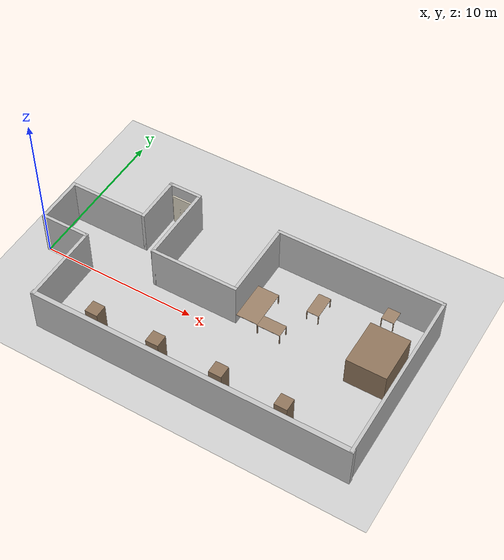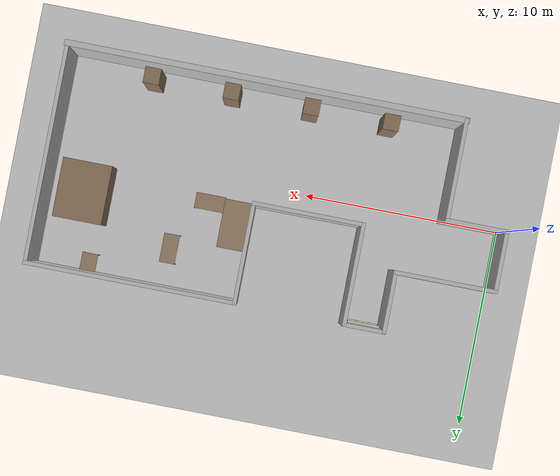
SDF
<?xml version="1.0" ?>
<sdf version="1.9">
  <world name="kmr_iiwa_world">
    <gravity>0 0 -9.81</gravity>
    <physics name="1ms" type="ignored">
      <max_step_size>0.001</max_step_size>
      <real_time_factor>1.0</real_time_factor>
    </physics>
    <plugin
      filename="ignition-gazebo-physics-system"
      name="ignition::gazebo::systems::Physics">
    </plugin>
    <plugin
        filename="ignition-gazebo-scene-broadcaster-system"
        name="ignition::gazebo::systems::SceneBroadcaster">
    </plugin>
    <plugin
      filename="gz-sim-sensors-system"
      name="gz::sim::systems::Sensors">
      <render_engine>ogre2</render_engine>
    </plugin>

    <plugin filename="libignition-gazebo-imu-system.so"
            name="ignition::gazebo::systems::Imu">
    </plugin>
    <plugin
      filename="libignition-gazebo-magnetometer-system"
      name="ignition::gazebo::systems::Magnetometer">
    </plugin>
    <plugin
      filename="libignition-gazebo-forcetorque-system"
      name="ignition::gazebo::systems::ForceTorque">
    </plugin>
    <!-- Necessary for spawining robot even from the launch-->
    <plugin
      filename="libignition-gazebo-user-commands-system"
      name="ignition::gazebo::systems::UserCommands">
    </plugin>

    <light type="directional" name="sun">
      <cast_shadows>true</cast_shadows>
      <pose>0 0 10 0 0 0</pose>
      <diffuse>0.8 0.8 0.8 1</diffuse>
      <specular>0.2 0.2 0.2 1</specular>
      <attenuation>
        <range>1000</range>
        <constant>0.9</constant>
        <linear>0.01</linear>
        <quadratic>0.001</quadratic>
      </attenuation>
      <direction>-0.5 0.1 -0.9</direction>
    </light>

    <model name="ground_plane">
      <static>true</static>
      <link name="link">
        <collision name="collision">
          <geometry>
            <plane>
              <normal>0 0 1</normal>
              <size>100 100</size>
            </plane>
          </geometry>
        </collision>
        <visual name="visual">
          <geometry>
            <plane>
              <normal>0 0 1</normal>
              <size>100 100</size>
            </plane>
          </geometry>
          <material>
            <ambient>0.8 0.8 0.8 1</ambient>
            <diffuse>0.8 0.8 0.8 1</diffuse>
            <specular>0.8 0.8 0.8 1</specular>
          </material>
        </visual>
      </link>
    </model>

    <!-- ===== Generado por generar_mundo.py a partir de laboratorio.yaml ===== -->
    <!-- Origen: Esquina SE, junto al pasillo -->
    <model name="pared_pasillo">
      <static>true</static>
      <pose>1.500 0.000 1.500 0 0 0.0000</pose>
      <link name="link">
        <collision name="pared_col"><pose>0 0 0 0 0 0</pose><geometry><box><size>3.200 0.200 3.000</size></box></geometry></collision>
        <visual name="pared_vis"><pose>0 0 0 0 0 0</pose><geometry><box><size>3.200 0.200 3.000</size></box></geometry><material><ambient>0.75 0.75 0.75 1</ambient><diffuse>0.75 0.75 0.75 1</diffuse></material></visual>
      </link>
    </model>
    <model name="pared_comedor">
      <static>true</static>
      <pose>3.000 -2.500 1.500 0 0 -1.5708</pose>
      <link name="link">
        <collision name="pared_col"><pose>0 0 0 0 0 0</pose><geometry><box><size>5.200 0.200 3.000</size></box></geometry></collision>
        <visual name="pared_vis"><pose>0 0 0 0 0 0</pose><geometry><box><size>5.200 0.200 3.000</size></box></geometry><material><ambient>0.75 0.75 0.75 1</ambient><diffuse>0.75 0.75 0.75 1</diffuse></material></visual>
      </link>
    </model>
    <model name="pared_cristal">
      <static>true</static>
      <pose>13.000 -5.000 1.500 0 0 0.0000</pose>
      <link name="link">
        <collision name="pared_col"><pose>0 0 0 0 0 0</pose><geometry><box><size>20.300 0.300 3.000</size></box></geometry></collision>
        <visual name="pared_vis"><pose>0 0 0 0 0 0</pose><geometry><box><size>20.300 0.300 3.000</size></box></geometry><material><ambient>0.75 0.75 0.75 1</ambient><diffuse>0.75 0.75 0.75 1</diffuse></material></visual>
      </link>
    </model>
    <model name="pared_cosas">
      <static>true</static>
      <pose>2.500 3.000 1.500 0 0 0.0000</pose>
      <link name="link">
        <collision name="pared_col"><pose>0 0 0 0 0 0</pose><geometry><box><size>5.200 0.200 3.000</size></box></geometry></collision>
        <visual name="pared_vis"><pose>0 0 0 0 0 0</pose><geometry><box><size>5.200 0.200 3.000</size></box></geometry><material><ambient>0.75 0.75 0.75 1</ambient><diffuse>0.75 0.75 0.75 1</diffuse></material></visual>
      </link>
    </model>
    <model name="pared_cosas2">
      <static>true</static>
      <pose>5.000 4.500 1.500 0 0 1.5708</pose>
      <link name="link">
        <collision name="pared_col"><pose>0 0 0 0 0 0</pose><geometry><box><size>3.200 0.200 3.000</size></box></geometry></collision>
        <visual name="pared_vis"><pose>0 0 0 0 0 0</pose><geometry><box><size>3.200 0.200 3.000</size></box></geometry><material><ambient>0.75 0.75 0.75 1</ambient><diffuse>0.75 0.75 0.75 1</diffuse></material></visual>
      </link>
    </model>
    <model name="pared_suelta">
      <static>true</static>
      <pose>6.000 6.000 1.500 0 0 0.0000</pose>
      <link name="link">
        <collision name="pared_col"><pose>0 0 0 0 0 0</pose><geometry><box><size>2.200 0.200 3.000</size></box></geometry></collision>
        <visual name="pared_vis"><pose>0 0 0 0 0 0</pose><geometry><box><size>2.200 0.200 3.000</size></box></geometry><material><ambient>0.75 0.75 0.75 1</ambient><diffuse>0.75 0.75 0.75 1</diffuse></material></visual>
      </link>
    </model>
    <model name="pared_jaula">
      <static>true</static>
      <pose>7.000 3.500 1.500 0 0 -1.5708</pose>
      <link name="link">
        <collision name="pared_col"><pose>0 0 0 0 0 0</pose><geometry><box><size>5.200 0.200 3.000</size></box></geometry></collision>
        <visual name="pared_vis"><pose>0 0 0 0 0 0</pose><geometry><box><size>5.200 0.200 3.000</size></box></geometry><material><ambient>0.75 0.75 0.75 1</ambient><diffuse>0.75 0.75 0.75 1</diffuse></material></visual>
      </link>
    </model>
    <model name="pared_jaula2">
      <static>true</static>
      <pose>9.750 1.000 1.500 0 0 0.0000</pose>
      <link name="link">
        <collision name="pared_col"><pose>0 0 0 0 0 0</pose><geometry><box><size>5.700 0.200 3.000</size></box></geometry></collision>
        <visual name="pared_vis"><pose>0 0 0 0 0 0</pose><geometry><box><size>5.700 0.200 3.000</size></box></geometry><material><ambient>0.75 0.75 0.75 1</ambient><diffuse>0.75 0.75 0.75 1</diffuse></material></visual>
      </link>
    </model>
    <model name="pared_jaula3">
      <static>true</static>
      <pose>12.500 3.500 1.500 0 0 1.5708</pose>
      <link name="link">
        <collision name="pared_col"><pose>0 0 0 0 0 0</pose><geometry><box><size>5.200 0.200 3.000</size></box></geometry></collision>
        <visual name="pared_vis"><pose>0 0 0 0 0 0</pose><geometry><box><size>5.200 0.200 3.000</size></box></geometry><material><ambient>0.75 0.75 0.75 1</ambient><diffuse>0.75 0.75 0.75 1</diffuse></material></visual>
      </link>
    </model>
    <model name="pared_laboratorio">
      <static>true</static>
      <pose>17.750 6.000 1.500 0 0 0.0000</pose>
      <link name="link">
        <collision name="pared_col"><pose>0 0 0 0 0 0</pose><geometry><box><size>10.700 0.200 3.000</size></box></geometry></collision>
        <visual name="pared_vis"><pose>0 0 0 0 0 0</pose><geometry><box><size>10.700 0.200 3.000</size></box></geometry><material><ambient>0.75 0.75 0.75 1</ambient><diffuse>0.75 0.75 0.75 1</diffuse></material></visual>
      </link>
    </model>
    <model name="pared_final">
      <static>true</static>
      <pose>23.000 0.500 1.500 0 0 -1.5708</pose>
      <link name="link">
        <collision name="pared_col"><pose>0 0 0 0 0 0</pose><geometry><box><size>11.200 0.200 3.000</size></box></geometry></collision>
        <visual name="pared_vis"><pose>0 0 0 0 0 0</pose><geometry><box><size>11.200 0.200 3.000</size></box></geometry><material><ambient>0.75 0.75 0.75 1</ambient><diffuse>0.75 0.75 0.75 1</diffuse></material></visual>
      </link>
    </model>
    <model name="pared_cerrar">
      <static>true</static>
      <pose>0.000 1.500 1.500 0 0 -1.5708</pose>
      <link name="link">
        <collision name="pared_col"><pose>0 0 0 0 0 0</pose><geometry><box><size>3.200 0.200 3.000</size></box></geometry></collision>
        <visual name="pared_vis"><pose>0 0 0 0 0 0</pose><geometry><box><size>3.200 0.200 3.000</size></box></geometry><material><ambient>0.75 0.75 0.75 1</ambient><diffuse>0.75 0.75 0.75 1</diffuse></material></visual>
      </link>
    </model>
    <model name="columna_1">
      <static>true</static>
      <pose>6.600 -4.200 1.500 0 0 0.0000</pose>
      <link name="link">
        <collision name="caja_col"><pose>0 0 0 0 0 0</pose><geometry><box><size>0.800 0.800 3.000</size></box></geometry></collision>
        <visual name="caja_vis"><pose>0 0 0 0 0 0</pose><geometry><box><size>0.800 0.800 3.000</size></box></geometry><material><ambient>0.55 0.45 0.35 1</ambient><diffuse>0.55 0.45 0.35 1</diffuse></material></visual>
      </link>
    </model>
    <model name="columna_2">
      <static>true</static>
      <pose>10.600 -4.200 1.500 0 0 0.0000</pose>
      <link name="link">
        <collision name="caja_col"><pose>0 0 0 0 0 0</pose><geometry><box><size>0.800 0.800 3.000</size></box></geometry></collision>
        <visual name="caja_vis"><pose>0 0 0 0 0 0</pose><geometry><box><size>0.800 0.800 3.000</size></box></geometry><material><ambient>0.55 0.45 0.35 1</ambient><diffuse>0.55 0.45 0.35 1</diffuse></material></visual>
      </link>
    </model>
    <model name="columna_3">
      <static>true</static>
      <pose>14.600 -4.200 1.500 0 0 0.0000</pose>
      <link name="link">
        <collision name="caja_col"><pose>0 0 0 0 0 0</pose><geometry><box><size>0.800 0.800 3.000</size></box></geometry></collision>
        <visual name="caja_vis"><pose>0 0 0 0 0 0</pose><geometry><box><size>0.800 0.800 3.000</size></box></geometry><material><ambient>0.55 0.45 0.35 1</ambient><diffuse>0.55 0.45 0.35 1</diffuse></material></visual>
      </link>
    </model>
    <model name="columna_4">
      <static>true</static>
      <pose>18.600 -4.200 1.500 0 0 0.0000</pose>
      <link name="link">
        <collision name="caja_col"><pose>0 0 0 0 0 0</pose><geometry><box><size>0.800 0.800 3.000</size></box></geometry></collision>
        <visual name="caja_vis"><pose>0 0 0 0 0 0</pose><geometry><box><size>0.800 0.800 3.000</size></box></geometry><material><ambient>0.55 0.45 0.35 1</ambient><diffuse>0.55 0.45 0.35 1</diffuse></material></visual>
      </link>
    </model>
    <model name="coche">
      <static>true</static>
      <pose>21.050 2.000 1.000 0 0 0.0000</pose>
      <link name="link">
        <collision name="caja_col"><pose>0 0 0 0 0 0</pose><geometry><box><size>2.500 3.000 2.000</size></box></geometry></collision>
        <visual name="caja_vis"><pose>0 0 0 0 0 0</pose><geometry><box><size>2.500 3.000 2.000</size></box></geometry><material><ambient>0.55 0.45 0.35 1</ambient><diffuse>0.55 0.45 0.35 1</diffuse></material></visual>
      </link>
    </model>
    <model name="mesa_robot_audio">
      <static>true</static>
      <pose>16.320 4.000 0.000 0 0 0.0000</pose>
      <link name="link">
        <collision name="tablero_col"><pose>0 0 0.735 0 0 0</pose><geometry><box><size>0.800 1.500 0.030</size></box></geometry></collision>
        <visual name="tablero_vis"><pose>0 0 0.735 0 0 0</pose><geometry><box><size>0.800 1.500 0.030</size></box></geometry><material><ambient>0.60 0.50 0.40 1</ambient><diffuse>0.60 0.50 0.40 1</diffuse></material></visual>
        <collision name="pata0_col"><pose>0.375 0.725 0.360 0 0 0</pose><geometry><box><size>0.050 0.050 0.720</size></box></geometry></collision>
        <visual name="pata0_vis"><pose>0.375 0.725 0.360 0 0 0</pose><geometry><box><size>0.050 0.050 0.720</size></box></geometry><material><ambient>0.60 0.50 0.40 1</ambient><diffuse>0.60 0.50 0.40 1</diffuse></material></visual>
        <collision name="pata1_col"><pose>0.375 -0.725 0.360 0 0 0</pose><geometry><box><size>0.050 0.050 0.720</size></box></geometry></collision>
        <visual name="pata1_vis"><pose>0.375 -0.725 0.360 0 0 0</pose><geometry><box><size>0.050 0.050 0.720</size></box></geometry><material><ambient>0.60 0.50 0.40 1</ambient><diffuse>0.60 0.50 0.40 1</diffuse></material></visual>
        <collision name="pata2_col"><pose>-0.375 0.725 0.360 0 0 0</pose><geometry><box><size>0.050 0.050 0.720</size></box></geometry></collision>
        <visual name="pata2_vis"><pose>-0.375 0.725 0.360 0 0 0</pose><geometry><box><size>0.050 0.050 0.720</size></box></geometry><material><ambient>0.60 0.50 0.40 1</ambient><diffuse>0.60 0.50 0.40 1</diffuse></material></visual>
        <collision name="pata3_col"><pose>-0.375 -0.725 0.360 0 0 0</pose><geometry><box><size>0.050 0.050 0.720</size></box></geometry></collision>
        <visual name="pata3_vis"><pose>-0.375 -0.725 0.360 0 0 0</pose><geometry><box><size>0.050 0.050 0.720</size></box></geometry><material><ambient>0.60 0.50 0.40 1</ambient><diffuse>0.60 0.50 0.40 1</diffuse></material></visual>
      </link>
    </model>
    <model name="mesa_ordenadores">
      <static>true</static>
      <pose>13.250 2.200 0.000 0 0 0.0000</pose>
      <link name="link">
        <collision name="tablero_col"><pose>0 0 0.735 0 0 0</pose><geometry><box><size>1.500 2.500 0.030</size></box></geometry></collision>
        <visual name="tablero_vis"><pose>0 0 0.735 0 0 0</pose><geometry><box><size>1.500 2.500 0.030</size></box></geometry><material><ambient>0.60 0.50 0.40 1</ambient><diffuse>0.60 0.50 0.40 1</diffuse></material></visual>
        <collision name="pata0_col"><pose>0.725 1.225 0.360 0 0 0</pose><geometry><box><size>0.050 0.050 0.720</size></box></geometry></collision>
        <visual name="pata0_vis"><pose>0.725 1.225 0.360 0 0 0</pose><geometry><box><size>0.050 0.050 0.720</size></box></geometry><material><ambient>0.60 0.50 0.40 1</ambient><diffuse>0.60 0.50 0.40 1</diffuse></material></visual>
        <collision name="pata1_col"><pose>0.725 -1.225 0.360 0 0 0</pose><geometry><box><size>0.050 0.050 0.720</size></box></geometry></collision>
        <visual name="pata1_vis"><pose>0.725 -1.225 0.360 0 0 0</pose><geometry><box><size>0.050 0.050 0.720</size></box></geometry><material><ambient>0.60 0.50 0.40 1</ambient><diffuse>0.60 0.50 0.40 1</diffuse></material></visual>
        <collision name="pata2_col"><pose>-0.725 1.225 0.360 0 0 0</pose><geometry><box><size>0.050 0.050 0.720</size></box></geometry></collision>
        <visual name="pata2_vis"><pose>-0.725 1.225 0.360 0 0 0</pose><geometry><box><size>0.050 0.050 0.720</size></box></geometry><material><ambient>0.60 0.50 0.40 1</ambient><diffuse>0.60 0.50 0.40 1</diffuse></material></visual>
        <collision name="pata3_col"><pose>-0.725 -1.225 0.360 0 0 0</pose><geometry><box><size>0.050 0.050 0.720</size></box></geometry></collision>
        <visual name="pata3_vis"><pose>-0.725 -1.225 0.360 0 0 0</pose><geometry><box><size>0.050 0.050 0.720</size></box></geometry><material><ambient>0.60 0.50 0.40 1</ambient><diffuse>0.60 0.50 0.40 1</diffuse></material></visual>
      </link>
    </model>
    <model name="mesa_pc">
      <static>true</static>
      <pose>14.750 1.300 0.000 0 0 0.0000</pose>
      <link name="link">
        <collision name="tablero_col"><pose>0 0 0.735 0 0 0</pose><geometry><box><size>1.500 0.800 0.030</size></box></geometry></collision>
        <visual name="tablero_vis"><pose>0 0 0.735 0 0 0</pose><geometry><box><size>1.500 0.800 0.030</size></box></geometry><material><ambient>0.60 0.50 0.40 1</ambient><diffuse>0.60 0.50 0.40 1</diffuse></material></visual>
        <collision name="pata0_col"><pose>0.725 0.375 0.360 0 0 0</pose><geometry><box><size>0.050 0.050 0.720</size></box></geometry></collision>
        <visual name="pata0_vis"><pose>0.725 0.375 0.360 0 0 0</pose><geometry><box><size>0.050 0.050 0.720</size></box></geometry><material><ambient>0.60 0.50 0.40 1</ambient><diffuse>0.60 0.50 0.40 1</diffuse></material></visual>
        <collision name="pata1_col"><pose>0.725 -0.375 0.360 0 0 0</pose><geometry><box><size>0.050 0.050 0.720</size></box></geometry></collision>
        <visual name="pata1_vis"><pose>0.725 -0.375 0.360 0 0 0</pose><geometry><box><size>0.050 0.050 0.720</size></box></geometry><material><ambient>0.60 0.50 0.40 1</ambient><diffuse>0.60 0.50 0.40 1</diffuse></material></visual>
        <collision name="pata2_col"><pose>-0.725 0.375 0.360 0 0 0</pose><geometry><box><size>0.050 0.050 0.720</size></box></geometry></collision>
        <visual name="pata2_vis"><pose>-0.725 0.375 0.360 0 0 0</pose><geometry><box><size>0.050 0.050 0.720</size></box></geometry><material><ambient>0.60 0.50 0.40 1</ambient><diffuse>0.60 0.50 0.40 1</diffuse></material></visual>
        <collision name="pata3_col"><pose>-0.725 -0.375 0.360 0 0 0</pose><geometry><box><size>0.050 0.050 0.720</size></box></geometry></collision>
        <visual name="pata3_vis"><pose>-0.725 -0.375 0.360 0 0 0</pose><geometry><box><size>0.050 0.050 0.720</size></box></geometry><material><ambient>0.60 0.50 0.40 1</ambient><diffuse>0.60 0.50 0.40 1</diffuse></material></visual>
      </link>
    </model>
    <model name="mesa_cosas">
      <static>true</static>
      <pose>20.230 5.500 0.000 0 0 0.0000</pose>
      <link name="link">
        <collision name="tablero_col"><pose>0 0 0.735 0 0 0</pose><geometry><box><size>0.800 1.000 0.030</size></box></geometry></collision>
        <visual name="tablero_vis"><pose>0 0 0.735 0 0 0</pose><geometry><box><size>0.800 1.000 0.030</size></box></geometry><material><ambient>0.60 0.50 0.40 1</ambient><diffuse>0.60 0.50 0.40 1</diffuse></material></visual>
        <collision name="pata0_col"><pose>0.375 0.475 0.360 0 0 0</pose><geometry><box><size>0.050 0.050 0.720</size></box></geometry></collision>
        <visual name="pata0_vis"><pose>0.375 0.475 0.360 0 0 0</pose><geometry><box><size>0.050 0.050 0.720</size></box></geometry><material><ambient>0.60 0.50 0.40 1</ambient><diffuse>0.60 0.50 0.40 1</diffuse></material></visual>
        <collision name="pata1_col"><pose>0.375 -0.475 0.360 0 0 0</pose><geometry><box><size>0.050 0.050 0.720</size></box></geometry></collision>
        <visual name="pata1_vis"><pose>0.375 -0.475 0.360 0 0 0</pose><geometry><box><size>0.050 0.050 0.720</size></box></geometry><material><ambient>0.60 0.50 0.40 1</ambient><diffuse>0.60 0.50 0.40 1</diffuse></material></visual>
        <collision name="pata2_col"><pose>-0.375 0.475 0.360 0 0 0</pose><geometry><box><size>0.050 0.050 0.720</size></box></geometry></collision>
        <visual name="pata2_vis"><pose>-0.375 0.475 0.360 0 0 0</pose><geometry><box><size>0.050 0.050 0.720</size></box></geometry><material><ambient>0.60 0.50 0.40 1</ambient><diffuse>0.60 0.50 0.40 1</diffuse></material></visual>
        <collision name="pata3_col"><pose>-0.375 -0.475 0.360 0 0 0</pose><geometry><box><size>0.050 0.050 0.720</size></box></geometry></collision>
        <visual name="pata3_vis"><pose>-0.375 -0.475 0.360 0 0 0</pose><geometry><box><size>0.050 0.050 0.720</size></box></geometry><material><ambient>0.60 0.50 0.40 1</ambient><diffuse>0.60 0.50 0.40 1</diffuse></material></visual>
      </link>
    </model>
    <model name="panel_atornillado_jaula">
      <static>true</static>
      <pose>6.000 5.840 0.000 0 0 3.1416</pose>
      <link name="link">
        <collision name="panel_col"><pose>0 0 1.100 0 0 0</pose><geometry><box><size>1.600 0.100 2.200</size></box></geometry></collision>
        <visual name="panel_vis"><pose>0 0 1.100 0 0 0</pose><geometry><box><size>1.600 0.100 2.200</size></box></geometry><material><ambient>0.86 0.83 0.76 1</ambient><diffuse>0.86 0.83 0.76 1</diffuse></material></visual>
        <visual name="hueco_f0_c0_vis"><pose>-0.300 0.052 1.000 -1.5708 0 0</pose><geometry><cylinder><radius>0.020</radius><length>0.004</length></cylinder></geometry><material><ambient>0.08 0.08 0.08 1</ambient><diffuse>0.08 0.08 0.08 1</diffuse></material></visual>
        <visual name="hueco_f0_c1_vis"><pose>0.000 0.052 1.000 -1.5708 0 0</pose><geometry><cylinder><radius>0.020</radius><length>0.004</length></cylinder></geometry><material><ambient>0.08 0.08 0.08 1</ambient><diffuse>0.08 0.08 0.08 1</diffuse></material></visual>
        <visual name="hueco_f0_c2_vis"><pose>0.300 0.052 1.000 -1.5708 0 0</pose><geometry><cylinder><radius>0.020</radius><length>0.004</length></cylinder></geometry><material><ambient>0.08 0.08 0.08 1</ambient><diffuse>0.08 0.08 0.08 1</diffuse></material></visual>
        <visual name="hueco_f1_c0_vis"><pose>-0.300 0.052 1.300 -1.5708 0 0</pose><geometry><cylinder><radius>0.020</radius><length>0.004</length></cylinder></geometry><material><ambient>0.08 0.08 0.08 1</ambient><diffuse>0.08 0.08 0.08 1</diffuse></material></visual>
        <visual name="hueco_f1_c1_vis"><pose>0.000 0.052 1.300 -1.5708 0 0</pose><geometry><cylinder><radius>0.020</radius><length>0.004</length></cylinder></geometry><material><ambient>0.08 0.08 0.08 1</ambient><diffuse>0.08 0.08 0.08 1</diffuse></material></visual>
        <visual name="hueco_f1_c2_vis"><pose>0.300 0.052 1.300 -1.5708 0 0</pose><geometry><cylinder><radius>0.020</radius><length>0.004</length></cylinder></geometry><material><ambient>0.08 0.08 0.08 1</ambient><diffuse>0.08 0.08 0.08 1</diffuse></material></visual>
      </link>
    </model>
  </world>
</sdf>
